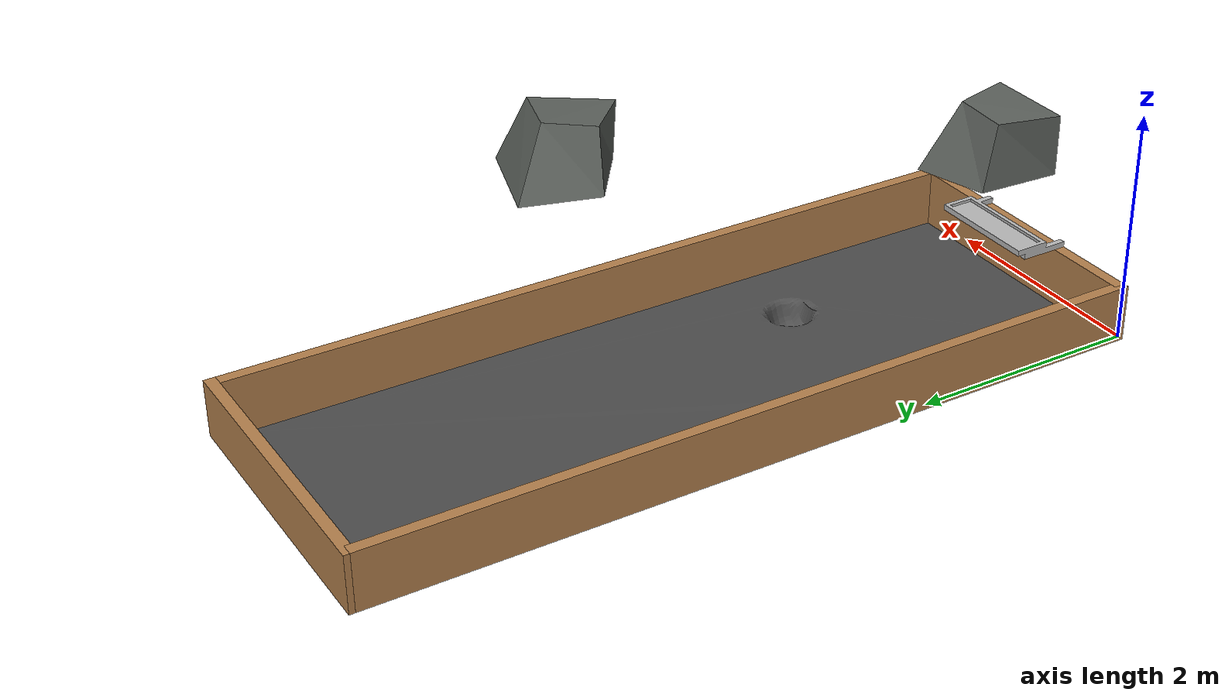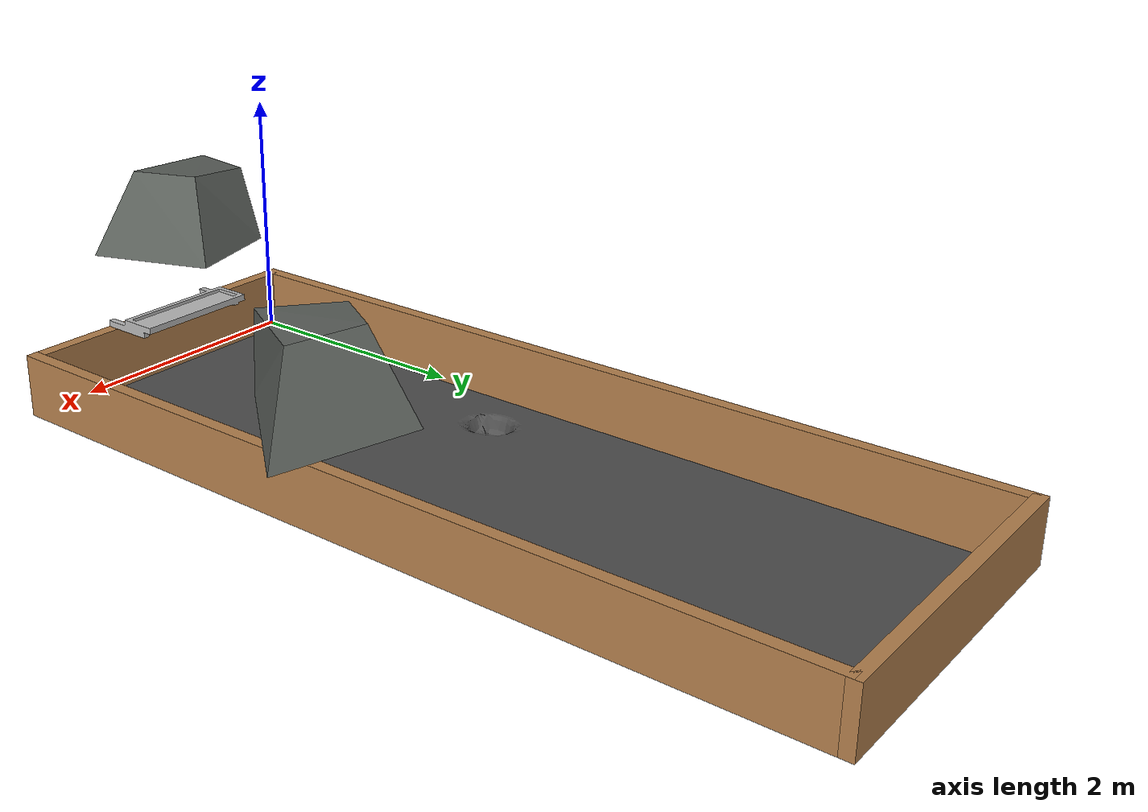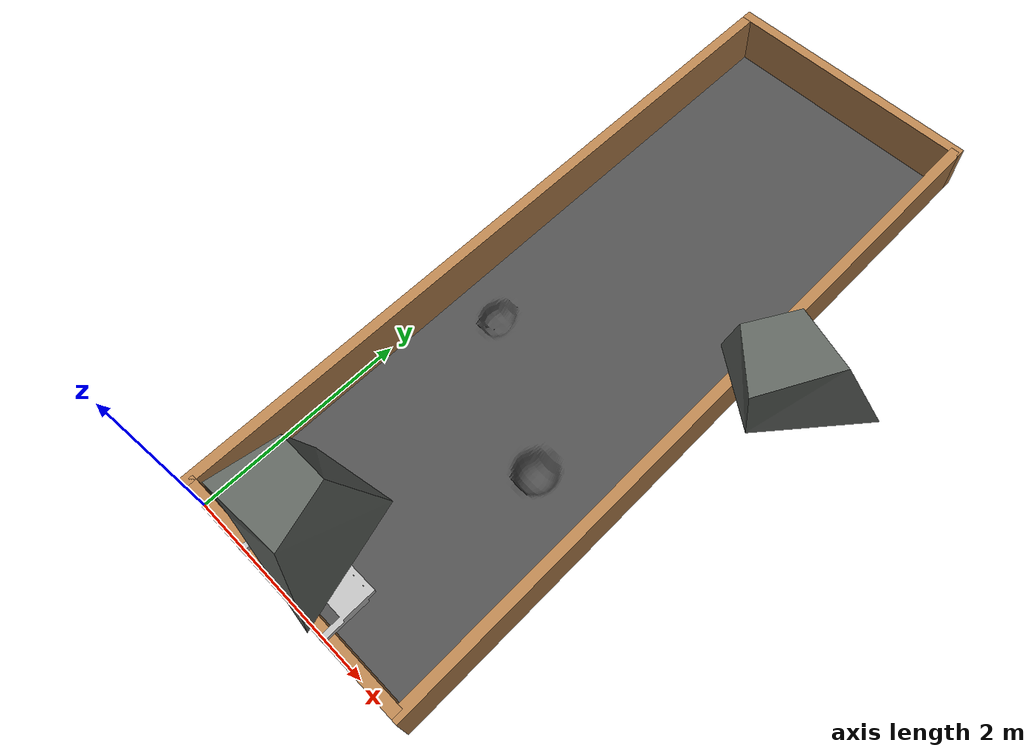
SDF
<?xml version="1.0"?>
<sdf version='1.6'>
  <world name='holes'>
    <!-- A global light source -->
    <include>
      <uri>model://sun</uri>
    </include>

    <physics name='default_physics' default='0' type='ode'>
      <max_step_size>0.01</max_step_size>
      <real_time_factor>1</real_time_factor>
      <real_time_update_rate>100</real_time_update_rate>
    </physics>

    <!-- No shadows -->
    <scene>
      <ambient>0.4 0.4 0.4 1</ambient>
      <background>0.7 0.7 0.7 1</background>
      <shadows>0</shadows>
    </scene>

    <gui fullscreen='0'>
      <camera name='user_camera'>
        <pose frame=''>7.55281 -2.00347 4.25994 -0 0.56764 2.3882</pose>
        <view_controller>orbit</view_controller>
        <projection_type>perspective</projection_type>
      </camera>
    </gui>

    <!-- The arena -->
    <model name="moon_arena">
      <include>
        <uri>model://arena</uri>
      </include>
    </model>

    <model name="ground">
      <!-- Offset by width/2, height/2, and rotate 180 -->
      <pose>1.25 3.45 0 0 0 3.14159</pose>
      <include>
        <uri>model://ground_holes</uri>
      </include>
    </model>

    <!-- A rock -->
    <model name="rock_1">
      <pose>0.5 1.6 0.2 1.57 0 0</pose>
      <include>
        <uri>model://rock</uri>
      </include>
    </model>

    <!-- Another rock -->
    <model name="rock_2">
      <pose>1.6 3.6 0.2 1.57 0 1</pose>
      <include>
        <uri>model://rock</uri>
      </include>
    </model>

    <!-- Deposition_bin -->
    <model name="deposition_bin">
      <pose> 0.755 .5 0.55 0 0 3.141592</pose>
      <include>
        <uri>model://deposition_bin</uri>
      </include>
    </model>

  </world>
</sdf>

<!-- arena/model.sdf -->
<sdf version='1.6'>
  <model name='moon_arena'>
    <pose frame=''>0 0 0 0 -0 0</pose>
    <link name='short_wall_1'>
      <collision name='short_wall_1_Collision'>
        <geometry>
          <box>
            <size>2.6 0.1 0.5</size>
          </box>
        </geometry>
        <pose frame=''>0 0 0.25 0 -0 0</pose>
        <max_contacts>10</max_contacts>
      </collision>
      <visual name='short_wall_1_Visual'>
        <pose frame=''>0 0 0.25 0 -0 0</pose>
        <geometry>
          <box>
            <size>2.5 0.1 0.5</size>
          </box>
        </geometry>
        <material>
          <script>
            <uri>file://media/materials/scripts/gazebo.material</uri>
            <name>Gazebo/Wood</name>
          </script>
          <ambient>1 1 1 1</ambient>
        </material>
        <meta>
          <layer>0</layer>
        </meta>
      </visual>
      <pose frame=''>1.25 0.05 0 0 -0 0</pose>
      <self_collide>0</self_collide>
      <enable_wind>0</enable_wind>
      <kinematic>0</kinematic>
    </link>
    <link name='long_wall_1'>
      <collision name='long_wall_1_Collision'>
        <geometry>
          <box>
            <size>6.9 0.1 0.5</size>
          </box>
        </geometry>
        <pose frame=''>0 0 0.25 0 -0 0</pose>
        <max_contacts>10</max_contacts>
      </collision>
      <visual name='long_wall_1_Visual'>
        <pose frame=''>0 0 0.25 0 -0 0</pose>
        <geometry>
          <box>
            <size>6.9 0.1 0.5</size>
          </box>
        </geometry>
        <material>
          <script>
            <uri>file://media/materials/scripts/gazebo.material</uri>
            <name>Gazebo/Wood</name>
          </script>
          <ambient>1 1 1 1</ambient>
        </material>
        <meta>
          <layer>0</layer>
        </meta>
      </visual>
      <pose frame=''>0 3.45 0 0 -0 1.5708</pose>
      <self_collide>0</self_collide>
      <enable_wind>0</enable_wind>
      <kinematic>0</kinematic>
    </link>
    <link name='long_wall_2'>
      <collision name='long_wall_2_Collision'>
        <geometry>
          <box>
            <size>6.9 0.1 0.5</size>
          </box>
        </geometry>
        <pose frame=''>0 0 0.25 0 -0 0</pose>
        <max_contacts>10</max_contacts>
      </collision>
      <visual name='long_wall_2_Visual'>
        <pose frame=''>0 0 0.25 0 -0 0</pose>
        <geometry>
          <box>
            <size>6.9 0.1 0.5</size>
          </box>
        </geometry>
        <material>
          <script>
            <uri>file://media/materials/scripts/gazebo.material</uri>
            <name>Gazebo/Wood</name>
          </script>
          <ambient>1 1 1 1</ambient>
        </material>
        <meta>
          <layer>0</layer>
        </meta>
      </visual>
      <pose frame=''>2.5 3.45 0 0 -0 1.5708</pose>
      <self_collide>0</self_collide>
      <enable_wind>0</enable_wind>
      <kinematic>0</kinematic>
    </link>
    <link name='short_wall_2'>
      <collision name='short_wall_2_Collision'>
        <geometry>
          <box>
            <size>2.5 0.1 0.5</size>
          </box>
        </geometry>
        <pose frame=''>0 0 0.25 0 -0 0</pose>
        <max_contacts>10</max_contacts>
      </collision>
      <visual name='short_wall_2_Visual'>
        <pose frame=''>0 0 0.25 0 -0 0</pose>
        <geometry>
          <box>
            <size>2.6 0.1 0.5</size>
          </box>
        </geometry>
        <material>
          <script>
            <uri>file://media/materials/scripts/gazebo.material</uri>
            <name>Gazebo/Wood</name>
          </script>
          <ambient>1 1 1 1</ambient>
        </material>
        <meta>
          <layer>0</layer>
        </meta>
      </visual>
      <pose frame=''>1.25 6.9 0 0 -0 0</pose>
      <self_collide>0</self_collide>
      <enable_wind>0</enable_wind>
      <kinematic>0</kinematic>
    </link>
    <static>1</static>
  </model>
</sdf>

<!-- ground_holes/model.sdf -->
<sdf version='1.6'>
  <model name='ground_holes'>
    <link name='link_0'>
      <pose frame=''>0 0 0 0 -0 0</pose>
      <gravity>0</gravity>
      <self_collide>0</self_collide>
      <kinematic>0</kinematic>
      <enable_wind>0</enable_wind>
      <visual name='visual'>
        <pose frame=''>0 0 0 0 -0 0</pose>
        <geometry>
          <mesh>
            <uri>model://ground_holes/meshes/ground_holes.dae</uri>
          </mesh>
        </geometry>
        <material>
          <ambient>0.3 0.3 0.3 1</ambient>
          <emissive>0.3 0.3 0.3 1</emissive>
          <script>
            <uri>model://ground_holes/materials/scripts</uri>
	          <name>regolith</name>
          </script>
        </material>
        <transparency>0</transparency>
        <cast_shadows>1</cast_shadows>
      </visual>
      <collision name='collision'>
        <laser_retro>0</laser_retro>
        <max_contacts>10</max_contacts>
        <pose frame=''>0 0 0 0 -0 0</pose>
        <geometry>
          <mesh>
            <uri>model://ground_holes/meshes/ground_holes.dae</uri>
          </mesh>
        </geometry>
      </collision>
    </link>
    <static>1</static>
    <allow_auto_disable>1</allow_auto_disable>
  </model>
</sdf>

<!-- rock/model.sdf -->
<sdf version='1.6'>
  <model name='rock'>
    <link name='link_0'>
      <pose frame=''>-0 0 0 0 -0 0</pose>
      <gravity>0</gravity>
      <self_collide>0</self_collide>
      <kinematic>0</kinematic>
      <enable_wind>0</enable_wind>
      <visual name='visual'>
        <pose frame=''>0 0 0 0 -0 0</pose>
        <geometry>
          <mesh>
            <uri>model://rock/meshes/rock.dae</uri>
            <scale>1 1 1</scale>
          </mesh>
        </geometry>
        <material>
          <lighting>1</lighting>
          <ambient>0.36 0.38 0.36 1</ambient>
          <diffuse>0.36 0.38 0.36 1</diffuse>
          <specular>0.01 0.01 0.01 1</specular>
          <emissive>0 0 0 1</emissive>
        </material>
        <transparency>0</transparency>
        <cast_shadows>1</cast_shadows>
      </visual>
      <collision name='collision'>
        <laser_retro>0</laser_retro>
        <max_contacts>10</max_contacts>
        <pose frame=''>0 0 0 0 -0 0</pose>
        <geometry>
          <mesh>
            <uri>model://rock/meshes/rock.dae</uri>
            <scale>1 1 1</scale>
          </mesh>
        </geometry>
      </collision>
    </link>
    <static>1</static>
    <allow_auto_disable>1</allow_auto_disable>
  </model>
</sdf>

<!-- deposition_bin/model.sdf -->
<sdf version='1.6'>
  <model name='deposition_bin'>
    <link name='link_0'>
      <pose frame=''>-0 0 0 0 -0 0</pose>
      <gravity>0</gravity>
      <self_collide>0</self_collide>
      <kinematic>0</kinematic>
      <enable_wind>0</enable_wind>
      <visual name='visual'>
        <pose frame=''>0 0 0 0 -0 0</pose>
        <geometry>
          <mesh>
            <uri>model://deposition_bin/meshes/deposition_bin.dae</uri>
            <scale>1 1 1</scale>
          </mesh>
        </geometry>
        <transparency>0</transparency>
        <cast_shadows>1</cast_shadows>
      </visual>
      <collision name='collision'>
        <laser_retro>0</laser_retro>
        <max_contacts>10</max_contacts>
        <pose frame=''>0 0 0 0 -0 0</pose>
        <geometry>
          <mesh>
            <uri>model://deposition_bin/meshes/deposition_bin.dae</uri>
            <scale>1 1 1</scale>
          </mesh>
        </geometry>
      </collision>
    </link>
    <static>1</static>
    <allow_auto_disable>1</allow_auto_disable>
  </model>
</sdf>
